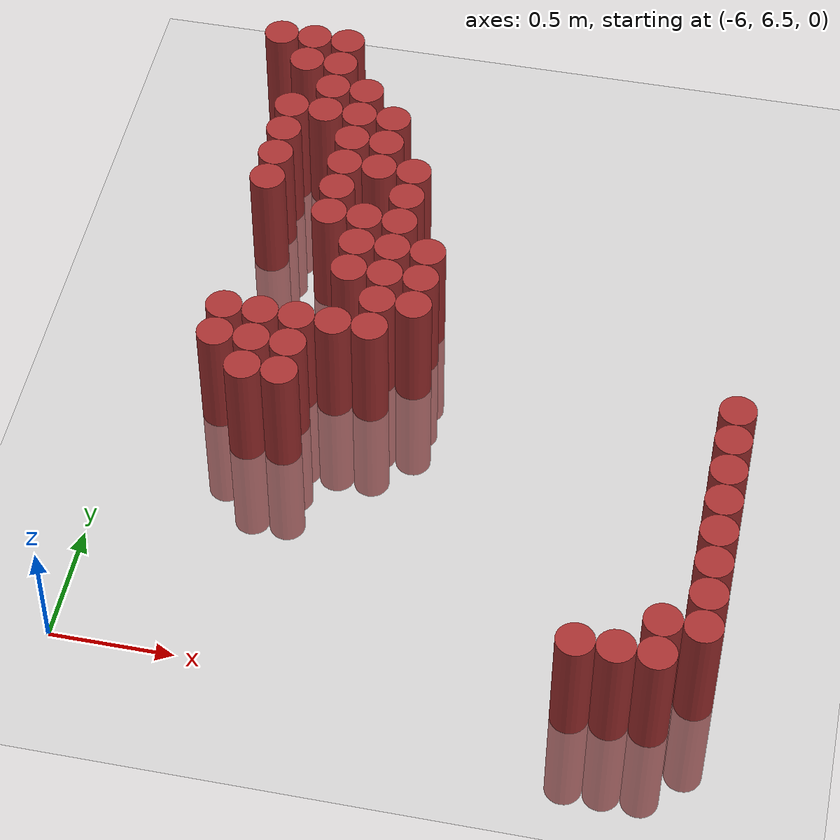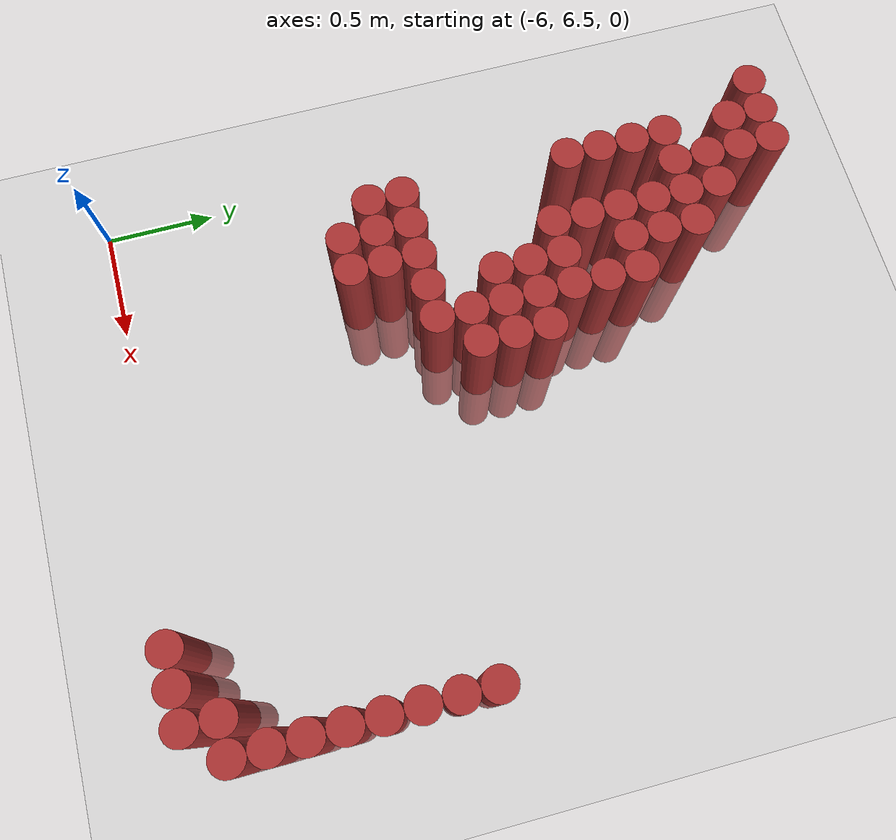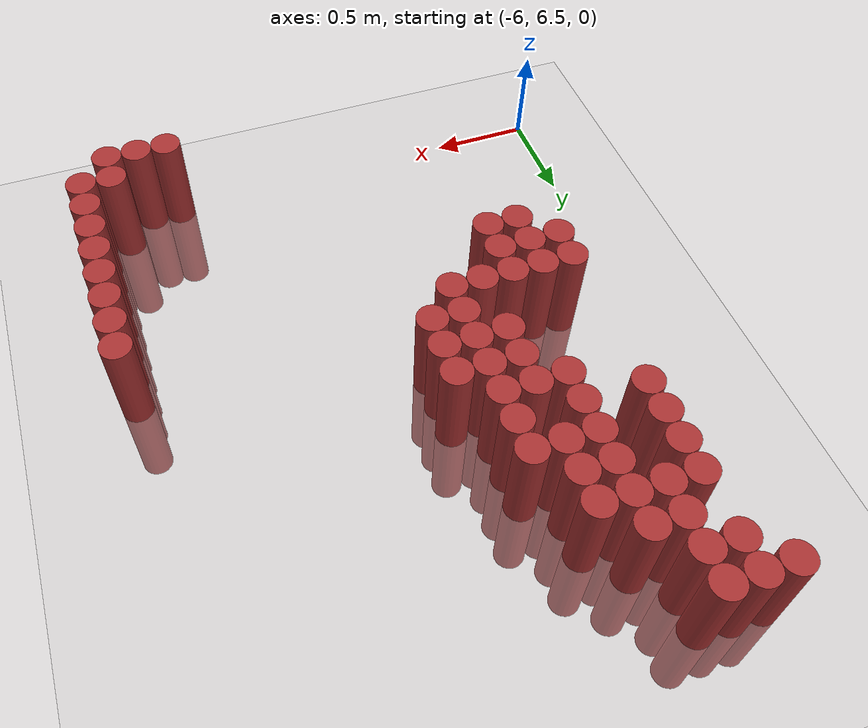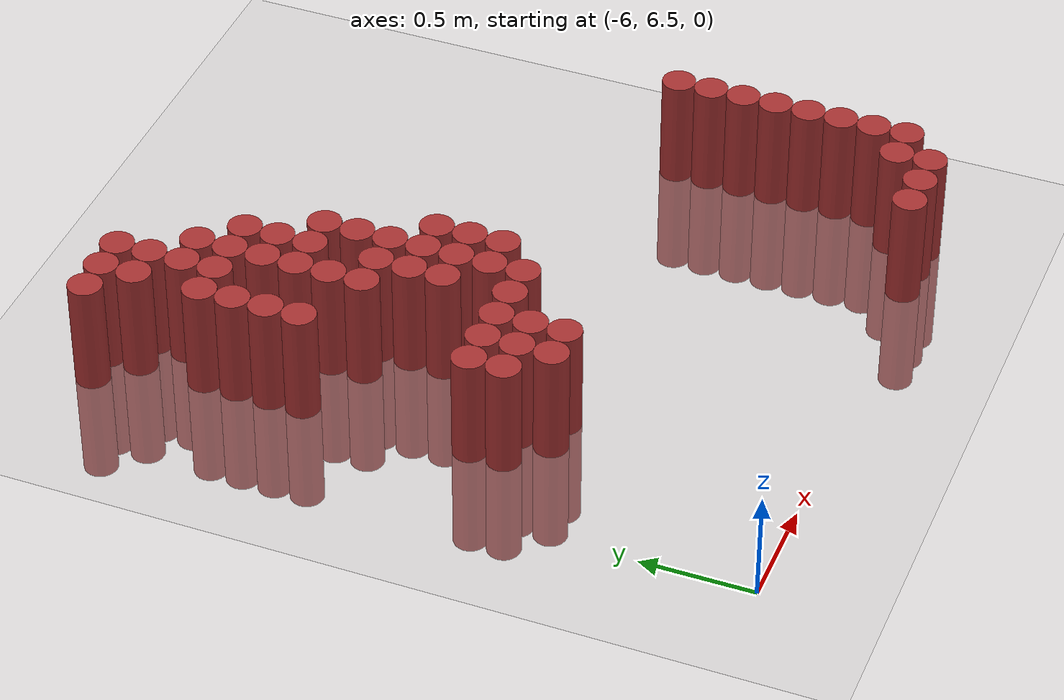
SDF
<sdf version="1.6">
 <world name="default">
  <model name="ground_plane">
   <static>1</static>
   <link name="link">
    <collision name="collision">
     <geometry><plane><normal>0 0 1</normal><size>100 100</size></plane></geometry>
     <surface><friction><ode><mu>100</mu><mu2>50</mu2></ode></friction></surface>
    </collision>
    <visual name="visual">
     <cast_shadows>0</cast_shadows>
     <geometry><plane><normal>0 0 1</normal><size>100 100</size></plane></geometry>
     <material>
      <script><uri>file://media/materials/scripts/gazebo.material</uri><name>Gazebo/Grey</name></script>
     </material>
    </visual>
   </link>
  </model>
  <model name="unit_cylinder_275">
   <static>1</static>
   <pose>-5.775000 9.525000 0.000000 0.000000 0.000000 0.000000</pose>
   <link name="link">
    <inertial>
     <mass>1</mass>
     <inertia><ixx>0.145833</ixx><ixy>0</ixy><ixz>0</ixz><iyy>0.145833</iyy><iyz>0</iyz><izz>0.125</izz></inertia>
    </inertial>
    <collision name="collision">
     <geometry><cylinder><radius>0.075000</radius><length>1</length></cylinder></geometry>
    </collision>
    <visual name="visual">
     <geometry><cylinder><radius>0.075000</radius><length>1</length></cylinder></geometry>
     <material>
      <ambient>0.648000 0.192000 0.192000 1</ambient>
      <diffuse>0.648000 0.192000 0.192000 1</diffuse>
     </material>
     <material>
      <script><name>Gazebo/Grey</name><uri>file://media/materials/scripts/gazebo.material</uri></script>
     </material>
    </visual>
   </link>
  </model>
  <model name="unit_cylinder_276">
   <static>1</static>
   <pose>-5.625000 7.725000 0.000000 0.000000 0.000000 0.000000</pose>
   <link name="link">
    <inertial>
     <mass>1</mass>
     <inertia><ixx>0.145833</ixx><ixy>0</ixy><ixz>0</ixz><iyy>0.145833</iyy><iyz>0</iyz><izz>0.125</izz></inertia>
    </inertial>
    <collision name="collision">
     <geometry><cylinder><radius>0.075000</radius><length>1</length></cylinder></geometry>
    </collision>
    <visual name="visual">
     <geometry><cylinder><radius>0.075000</radius><length>1</length></cylinder></geometry>
     <material>
      <ambient>0.648000 0.192000 0.192000 1</ambient>
      <diffuse>0.648000 0.192000 0.192000 1</diffuse>
     </material>
     <material>
      <script><name>Gazebo/Grey</name><uri>file://media/materials/scripts/gazebo.material</uri></script>
     </material>
    </visual>
   </link>
  </model>
  <model name="unit_cylinder_277">
   <static>1</static>
   <pose>-5.625000 7.875000 0.000000 0.000000 0.000000 0.000000</pose>
   <link name="link">
    <inertial>
     <mass>1</mass>
     <inertia><ixx>0.145833</ixx><ixy>0</ixy><ixz>0</ixz><iyy>0.145833</iyy><iyz>0</iyz><izz>0.125</izz></inertia>
    </inertial>
    <collision name="collision">
     <geometry><cylinder><radius>0.075000</radius><length>1</length></cylinder></geometry>
    </collision>
    <visual name="visual">
     <geometry><cylinder><radius>0.075000</radius><length>1</length></cylinder></geometry>
     <material>
      <ambient>0.648000 0.192000 0.192000 1</ambient>
      <diffuse>0.648000 0.192000 0.192000 1</diffuse>
     </material>
     <material>
      <script><name>Gazebo/Grey</name><uri>file://media/materials/scripts/gazebo.material</uri></script>
     </material>
    </visual>
   </link>
  </model>
  <model name="unit_cylinder_278">
   <static>1</static>
   <pose>-5.625000 8.625000 0.000000 0.000000 0.000000 0.000000</pose>
   <link name="link">
    <inertial>
     <mass>1</mass>
     <inertia><ixx>0.145833</ixx><ixy>0</ixy><ixz>0</ixz><iyy>0.145833</iyy><iyz>0</iyz><izz>0.125</izz></inertia>
    </inertial>
    <collision name="collision">
     <geometry><cylinder><radius>0.075000</radius><length>1</length></cylinder></geometry>
    </collision>
    <visual name="visual">
     <geometry><cylinder><radius>0.075000</radius><length>1</length></cylinder></geometry>
     <material>
      <ambient>0.648000 0.192000 0.192000 1</ambient>
      <diffuse>0.648000 0.192000 0.192000 1</diffuse>
     </material>
     <material>
      <script><name>Gazebo/Grey</name><uri>file://media/materials/scripts/gazebo.material</uri></script>
     </material>
    </visual>
   </link>
  </model>
  <model name="unit_cylinder_279">
   <static>1</static>
   <pose>-5.625000 8.775000 0.000000 0.000000 0.000000 0.000000</pose>
   <link name="link">
    <inertial>
     <mass>1</mass>
     <inertia><ixx>0.145833</ixx><ixy>0</ixy><ixz>0</ixz><iyy>0.145833</iyy><iyz>0</iyz><izz>0.125</izz></inertia>
    </inertial>
    <collision name="collision">
     <geometry><cylinder><radius>0.075000</radius><length>1</length></cylinder></geometry>
    </collision>
    <visual name="visual">
     <geometry><cylinder><radius>0.075000</radius><length>1</length></cylinder></geometry>
     <material>
      <ambient>0.648000 0.192000 0.192000 1</ambient>
      <diffuse>0.648000 0.192000 0.192000 1</diffuse>
     </material>
     <material>
      <script><name>Gazebo/Grey</name><uri>file://media/materials/scripts/gazebo.material</uri></script>
     </material>
    </visual>
   </link>
  </model>
  <model name="unit_cylinder_280">
   <static>1</static>
   <pose>-5.625000 8.925000 0.000000 0.000000 0.000000 0.000000</pose>
   <link name="link">
    <inertial>
     <mass>1</mass>
     <inertia><ixx>0.145833</ixx><ixy>0</ixy><ixz>0</ixz><iyy>0.145833</iyy><iyz>0</iyz><izz>0.125</izz></inertia>
    </inertial>
    <collision name="collision">
     <geometry><cylinder><radius>0.075000</radius><length>1</length></cylinder></geometry>
    </collision>
    <visual name="visual">
     <geometry><cylinder><radius>0.075000</radius><length>1</length></cylinder></geometry>
     <material>
      <ambient>0.648000 0.192000 0.192000 1</ambient>
      <diffuse>0.648000 0.192000 0.192000 1</diffuse>
     </material>
     <material>
      <script><name>Gazebo/Grey</name><uri>file://media/materials/scripts/gazebo.material</uri></script>
     </material>
    </visual>
   </link>
  </model>
  <model name="unit_cylinder_281">
   <static>1</static>
   <pose>-5.625000 9.075000 0.000000 0.000000 0.000000 0.000000</pose>
   <link name="link">
    <inertial>
     <mass>1</mass>
     <inertia><ixx>0.145833</ixx><ixy>0</ixy><ixz>0</ixz><iyy>0.145833</iyy><iyz>0</iyz><izz>0.125</izz></inertia>
    </inertial>
    <collision name="collision">
     <geometry><cylinder><radius>0.075000</radius><length>1</length></cylinder></geometry>
    </collision>
    <visual name="visual">
     <geometry><cylinder><radius>0.075000</radius><length>1</length></cylinder></geometry>
     <material>
      <ambient>0.648000 0.192000 0.192000 1</ambient>
      <diffuse>0.648000 0.192000 0.192000 1</diffuse>
     </material>
     <material>
      <script><name>Gazebo/Grey</name><uri>file://media/materials/scripts/gazebo.material</uri></script>
     </material>
    </visual>
   </link>
  </model>
  <model name="unit_cylinder_282">
   <static>1</static>
   <pose>-5.625000 9.375000 0.000000 0.000000 0.000000 0.000000</pose>
   <link name="link">
    <inertial>
     <mass>1</mass>
     <inertia><ixx>0.145833</ixx><ixy>0</ixy><ixz>0</ixz><iyy>0.145833</iyy><iyz>0</iyz><izz>0.125</izz></inertia>
    </inertial>
    <collision name="collision">
     <geometry><cylinder><radius>0.075000</radius><length>1</length></cylinder></geometry>
    </collision>
    <visual name="visual">
     <geometry><cylinder><radius>0.075000</radius><length>1</length></cylinder></geometry>
     <material>
      <ambient>0.648000 0.192000 0.192000 1</ambient>
      <diffuse>0.648000 0.192000 0.192000 1</diffuse>
     </material>
     <material>
      <script><name>Gazebo/Grey</name><uri>file://media/materials/scripts/gazebo.material</uri></script>
     </material>
    </visual>
   </link>
  </model>
  <model name="unit_cylinder_283">
   <static>1</static>
   <pose>-5.625000 9.525000 0.000000 0.000000 0.000000 0.000000</pose>
   <link name="link">
    <inertial>
     <mass>1</mass>
     <inertia><ixx>0.145833</ixx><ixy>0</ixy><ixz>0</ixz><iyy>0.145833</iyy><iyz>0</iyz><izz>0.125</izz></inertia>
    </inertial>
    <collision name="collision">
     <geometry><cylinder><radius>0.075000</radius><length>1</length></cylinder></geometry>
    </collision>
    <visual name="visual">
     <geometry><cylinder><radius>0.075000</radius><length>1</length></cylinder></geometry>
     <material>
      <ambient>0.648000 0.192000 0.192000 1</ambient>
      <diffuse>0.648000 0.192000 0.192000 1</diffuse>
     </material>
     <material>
      <script><name>Gazebo/Grey</name><uri>file://media/materials/scripts/gazebo.material</uri></script>
     </material>
    </visual>
   </link>
  </model>
  <model name="unit_cylinder_284">
   <static>1</static>
   <pose>-5.475000 7.575000 0.000000 0.000000 0.000000 0.000000</pose>
   <link name="link">
    <inertial>
     <mass>1</mass>
     <inertia><ixx>0.145833</ixx><ixy>0</ixy><ixz>0</ixz><iyy>0.145833</iyy><iyz>0</iyz><izz>0.125</izz></inertia>
    </inertial>
    <collision name="collision">
     <geometry><cylinder><radius>0.075000</radius><length>1</length></cylinder></geometry>
    </collision>
    <visual name="visual">
     <geometry><cylinder><radius>0.075000</radius><length>1</length></cylinder></geometry>
     <material>
      <ambient>0.648000 0.192000 0.192000 1</ambient>
      <diffuse>0.648000 0.192000 0.192000 1</diffuse>
     </material>
     <material>
      <script><name>Gazebo/Grey</name><uri>file://media/materials/scripts/gazebo.material</uri></script>
     </material>
    </visual>
   </link>
  </model>
  <model name="unit_cylinder_285">
   <static>1</static>
   <pose>-5.475000 7.725000 0.000000 0.000000 0.000000 0.000000</pose>
   <link name="link">
    <inertial>
     <mass>1</mass>
     <inertia><ixx>0.145833</ixx><ixy>0</ixy><ixz>0</ixz><iyy>0.145833</iyy><iyz>0</iyz><izz>0.125</izz></inertia>
    </inertial>
    <collision name="collision">
     <geometry><cylinder><radius>0.075000</radius><length>1</length></cylinder></geometry>
    </collision>
    <visual name="visual">
     <geometry><cylinder><radius>0.075000</radius><length>1</length></cylinder></geometry>
     <material>
      <ambient>0.648000 0.192000 0.192000 1</ambient>
      <diffuse>0.648000 0.192000 0.192000 1</diffuse>
     </material>
     <material>
      <script><name>Gazebo/Grey</name><uri>file://media/materials/scripts/gazebo.material</uri></script>
     </material>
    </visual>
   </link>
  </model>
  <model name="unit_cylinder_286">
   <static>1</static>
   <pose>-5.475000 7.875000 0.000000 0.000000 0.000000 0.000000</pose>
   <link name="link">
    <inertial>
     <mass>1</mass>
     <inertia><ixx>0.145833</ixx><ixy>0</ixy><ixz>0</ixz><iyy>0.145833</iyy><iyz>0</iyz><izz>0.125</izz></inertia>
    </inertial>
    <collision name="collision">
     <geometry><cylinder><radius>0.075000</radius><length>1</length></cylinder></geometry>
    </collision>
    <visual name="visual">
     <geometry><cylinder><radius>0.075000</radius><length>1</length></cylinder></geometry>
     <material>
      <ambient>0.648000 0.192000 0.192000 1</ambient>
      <diffuse>0.648000 0.192000 0.192000 1</diffuse>
     </material>
     <material>
      <script><name>Gazebo/Grey</name><uri>file://media/materials/scripts/gazebo.material</uri></script>
     </material>
    </visual>
   </link>
  </model>
  <model name="unit_cylinder_287">
   <static>1</static>
   <pose>-5.475000 9.075000 0.000000 0.000000 0.000000 0.000000</pose>
   <link name="link">
    <inertial>
     <mass>1</mass>
     <inertia><ixx>0.145833</ixx><ixy>0</ixy><ixz>0</ixz><iyy>0.145833</iyy><iyz>0</iyz><izz>0.125</izz></inertia>
    </inertial>
    <collision name="collision">
     <geometry><cylinder><radius>0.075000</radius><length>1</length></cylinder></geometry>
    </collision>
    <visual name="visual">
     <geometry><cylinder><radius>0.075000</radius><length>1</length></cylinder></geometry>
     <material>
      <ambient>0.648000 0.192000 0.192000 1</ambient>
      <diffuse>0.648000 0.192000 0.192000 1</diffuse>
     </material>
     <material>
      <script><name>Gazebo/Grey</name><uri>file://media/materials/scripts/gazebo.material</uri></script>
     </material>
    </visual>
   </link>
  </model>
  <model name="unit_cylinder_288">
   <static>1</static>
   <pose>-5.475000 9.225000 0.000000 0.000000 0.000000 0.000000</pose>
   <link name="link">
    <inertial>
     <mass>1</mass>
     <inertia><ixx>0.145833</ixx><ixy>0</ixy><ixz>0</ixz><iyy>0.145833</iyy><iyz>0</iyz><izz>0.125</izz></inertia>
    </inertial>
    <collision name="collision">
     <geometry><cylinder><radius>0.075000</radius><length>1</length></cylinder></geometry>
    </collision>
    <visual name="visual">
     <geometry><cylinder><radius>0.075000</radius><length>1</length></cylinder></geometry>
     <material>
      <ambient>0.648000 0.192000 0.192000 1</ambient>
      <diffuse>0.648000 0.192000 0.192000 1</diffuse>
     </material>
     <material>
      <script><name>Gazebo/Grey</name><uri>file://media/materials/scripts/gazebo.material</uri></script>
     </material>
    </visual>
   </link>
  </model>
  <model name="unit_cylinder_289">
   <static>1</static>
   <pose>-5.475000 9.375000 0.000000 0.000000 0.000000 0.000000</pose>
   <link name="link">
    <inertial>
     <mass>1</mass>
     <inertia><ixx>0.145833</ixx><ixy>0</ixy><ixz>0</ixz><iyy>0.145833</iyy><iyz>0</iyz><izz>0.125</izz></inertia>
    </inertial>
    <collision name="collision">
     <geometry><cylinder><radius>0.075000</radius><length>1</length></cylinder></geometry>
    </collision>
    <visual name="visual">
     <geometry><cylinder><radius>0.075000</radius><length>1</length></cylinder></geometry>
     <material>
      <ambient>0.648000 0.192000 0.192000 1</ambient>
      <diffuse>0.648000 0.192000 0.192000 1</diffuse>
     </material>
     <material>
      <script><name>Gazebo/Grey</name><uri>file://media/materials/scripts/gazebo.material</uri></script>
     </material>
    </visual>
   </link>
  </model>
  <model name="unit_cylinder_290">
   <static>1</static>
   <pose>-5.475000 9.525000 0.000000 0.000000 0.000000 0.000000</pose>
   <link name="link">
    <inertial>
     <mass>1</mass>
     <inertia><ixx>0.145833</ixx><ixy>0</ixy><ixz>0</ixz><iyy>0.145833</iyy><iyz>0</iyz><izz>0.125</izz></inertia>
    </inertial>
    <collision name="collision">
     <geometry><cylinder><radius>0.075000</radius><length>1</length></cylinder></geometry>
    </collision>
    <visual name="visual">
     <geometry><cylinder><radius>0.075000</radius><length>1</length></cylinder></geometry>
     <material>
      <ambient>0.648000 0.192000 0.192000 1</ambient>
      <diffuse>0.648000 0.192000 0.192000 1</diffuse>
     </material>
     <material>
      <script><name>Gazebo/Grey</name><uri>file://media/materials/scripts/gazebo.material</uri></script>
     </material>
    </visual>
   </link>
  </model>
  <model name="unit_cylinder_291">
   <static>1</static>
   <pose>-5.325000 7.575000 0.000000 0.000000 0.000000 0.000000</pose>
   <link name="link">
    <inertial>
     <mass>1</mass>
     <inertia><ixx>0.145833</ixx><ixy>0</ixy><ixz>0</ixz><iyy>0.145833</iyy><iyz>0</iyz><izz>0.125</izz></inertia>
    </inertial>
    <collision name="collision">
     <geometry><cylinder><radius>0.075000</radius><length>1</length></cylinder></geometry>
    </collision>
    <visual name="visual">
     <geometry><cylinder><radius>0.075000</radius><length>1</length></cylinder></geometry>
     <material>
      <ambient>0.648000 0.192000 0.192000 1</ambient>
      <diffuse>0.648000 0.192000 0.192000 1</diffuse>
     </material>
     <material>
      <script><name>Gazebo/Grey</name><uri>file://media/materials/scripts/gazebo.material</uri></script>
     </material>
    </visual>
   </link>
  </model>
  <model name="unit_cylinder_292">
   <static>1</static>
   <pose>-5.325000 7.725000 0.000000 0.000000 0.000000 0.000000</pose>
   <link name="link">
    <inertial>
     <mass>1</mass>
     <inertia><ixx>0.145833</ixx><ixy>0</ixy><ixz>0</ixz><iyy>0.145833</iyy><iyz>0</iyz><izz>0.125</izz></inertia>
    </inertial>
    <collision name="collision">
     <geometry><cylinder><radius>0.075000</radius><length>1</length></cylinder></geometry>
    </collision>
    <visual name="visual">
     <geometry><cylinder><radius>0.075000</radius><length>1</length></cylinder></geometry>
     <material>
      <ambient>0.648000 0.192000 0.192000 1</ambient>
      <diffuse>0.648000 0.192000 0.192000 1</diffuse>
     </material>
     <material>
      <script><name>Gazebo/Grey</name><uri>file://media/materials/scripts/gazebo.material</uri></script>
     </material>
    </visual>
   </link>
  </model>
  <model name="unit_cylinder_293">
   <static>1</static>
   <pose>-5.325000 7.875000 0.000000 0.000000 0.000000 0.000000</pose>
   <link name="link">
    <inertial>
     <mass>1</mass>
     <inertia><ixx>0.145833</ixx><ixy>0</ixy><ixz>0</ixz><iyy>0.145833</iyy><iyz>0</iyz><izz>0.125</izz></inertia>
    </inertial>
    <collision name="collision">
     <geometry><cylinder><radius>0.075000</radius><length>1</length></cylinder></geometry>
    </collision>
    <visual name="visual">
     <geometry><cylinder><radius>0.075000</radius><length>1</length></cylinder></geometry>
     <material>
      <ambient>0.648000 0.192000 0.192000 1</ambient>
      <diffuse>0.648000 0.192000 0.192000 1</diffuse>
     </material>
     <material>
      <script><name>Gazebo/Grey</name><uri>file://media/materials/scripts/gazebo.material</uri></script>
     </material>
    </visual>
   </link>
  </model>
  <model name="unit_cylinder_294">
   <static>1</static>
   <pose>-5.325000 8.475000 0.000000 0.000000 0.000000 0.000000</pose>
   <link name="link">
    <inertial>
     <mass>1</mass>
     <inertia><ixx>0.145833</ixx><ixy>0</ixy><ixz>0</ixz><iyy>0.145833</iyy><iyz>0</iyz><izz>0.125</izz></inertia>
    </inertial>
    <collision name="collision">
     <geometry><cylinder><radius>0.075000</radius><length>1</length></cylinder></geometry>
    </collision>
    <visual name="visual">
     <geometry><cylinder><radius>0.075000</radius><length>1</length></cylinder></geometry>
     <material>
      <ambient>0.648000 0.192000 0.192000 1</ambient>
      <diffuse>0.648000 0.192000 0.192000 1</diffuse>
     </material>
     <material>
      <script><name>Gazebo/Grey</name><uri>file://media/materials/scripts/gazebo.material</uri></script>
     </material>
    </visual>
   </link>
  </model>
  <model name="unit_cylinder_295">
   <static>1</static>
   <pose>-5.325000 8.625000 0.000000 0.000000 0.000000 0.000000</pose>
   <link name="link">
    <inertial>
     <mass>1</mass>
     <inertia><ixx>0.145833</ixx><ixy>0</ixy><ixz>0</ixz><iyy>0.145833</iyy><iyz>0</iyz><izz>0.125</izz></inertia>
    </inertial>
    <collision name="collision">
     <geometry><cylinder><radius>0.075000</radius><length>1</length></cylinder></geometry>
    </collision>
    <visual name="visual">
     <geometry><cylinder><radius>0.075000</radius><length>1</length></cylinder></geometry>
     <material>
      <ambient>0.648000 0.192000 0.192000 1</ambient>
      <diffuse>0.648000 0.192000 0.192000 1</diffuse>
     </material>
     <material>
      <script><name>Gazebo/Grey</name><uri>file://media/materials/scripts/gazebo.material</uri></script>
     </material>
    </visual>
   </link>
  </model>
  <model name="unit_cylinder_296">
   <static>1</static>
   <pose>-5.325000 8.775000 0.000000 0.000000 0.000000 0.000000</pose>
   <link name="link">
    <inertial>
     <mass>1</mass>
     <inertia><ixx>0.145833</ixx><ixy>0</ixy><ixz>0</ixz><iyy>0.145833</iyy><iyz>0</iyz><izz>0.125</izz></inertia>
    </inertial>
    <collision name="collision">
     <geometry><cylinder><radius>0.075000</radius><length>1</length></cylinder></geometry>
    </collision>
    <visual name="visual">
     <geometry><cylinder><radius>0.075000</radius><length>1</length></cylinder></geometry>
     <material>
      <ambient>0.648000 0.192000 0.192000 1</ambient>
      <diffuse>0.648000 0.192000 0.192000 1</diffuse>
     </material>
     <material>
      <script><name>Gazebo/Grey</name><uri>file://media/materials/scripts/gazebo.material</uri></script>
     </material>
    </visual>
   </link>
  </model>
  <model name="unit_cylinder_297">
   <static>1</static>
   <pose>-5.325000 8.925000 0.000000 0.000000 0.000000 0.000000</pose>
   <link name="link">
    <inertial>
     <mass>1</mass>
     <inertia><ixx>0.145833</ixx><ixy>0</ixy><ixz>0</ixz><iyy>0.145833</iyy><iyz>0</iyz><izz>0.125</izz></inertia>
    </inertial>
    <collision name="collision">
     <geometry><cylinder><radius>0.075000</radius><length>1</length></cylinder></geometry>
    </collision>
    <visual name="visual">
     <geometry><cylinder><radius>0.075000</radius><length>1</length></cylinder></geometry>
     <material>
      <ambient>0.648000 0.192000 0.192000 1</ambient>
      <diffuse>0.648000 0.192000 0.192000 1</diffuse>
     </material>
     <material>
      <script><name>Gazebo/Grey</name><uri>file://media/materials/scripts/gazebo.material</uri></script>
     </material>
    </visual>
   </link>
  </model>
  <model name="unit_cylinder_298">
   <static>1</static>
   <pose>-5.325000 9.075000 0.000000 0.000000 0.000000 0.000000</pose>
   <link name="link">
    <inertial>
     <mass>1</mass>
     <inertia><ixx>0.145833</ixx><ixy>0</ixy><ixz>0</ixz><iyy>0.145833</iyy><iyz>0</iyz><izz>0.125</izz></inertia>
    </inertial>
    <collision name="collision">
     <geometry><cylinder><radius>0.075000</radius><length>1</length></cylinder></geometry>
    </collision>
    <visual name="visual">
     <geometry><cylinder><radius>0.075000</radius><length>1</length></cylinder></geometry>
     <material>
      <ambient>0.648000 0.192000 0.192000 1</ambient>
      <diffuse>0.648000 0.192000 0.192000 1</diffuse>
     </material>
     <material>
      <script><name>Gazebo/Grey</name><uri>file://media/materials/scripts/gazebo.material</uri></script>
     </material>
    </visual>
   </link>
  </model>
  <model name="unit_cylinder_299">
   <static>1</static>
   <pose>-5.325000 9.225000 0.000000 0.000000 0.000000 0.000000</pose>
   <link name="link">
    <inertial>
     <mass>1</mass>
     <inertia><ixx>0.145833</ixx><ixy>0</ixy><ixz>0</ixz><iyy>0.145833</iyy><iyz>0</iyz><izz>0.125</izz></inertia>
    </inertial>
    <collision name="collision">
     <geometry><cylinder><radius>0.075000</radius><length>1</length></cylinder></geometry>
    </collision>
    <visual name="visual">
     <geometry><cylinder><radius>0.075000</radius><length>1</length></cylinder></geometry>
     <material>
      <ambient>0.648000 0.192000 0.192000 1</ambient>
      <diffuse>0.648000 0.192000 0.192000 1</diffuse>
     </material>
     <material>
      <script><name>Gazebo/Grey</name><uri>file://media/materials/scripts/gazebo.material</uri></script>
     </material>
    </visual>
   </link>
  </model>
  <model name="unit_cylinder_300">
   <static>1</static>
   <pose>-5.175000 7.875000 0.000000 0.000000 0.000000 0.000000</pose>
   <link name="link">
    <inertial>
     <mass>1</mass>
     <inertia><ixx>0.145833</ixx><ixy>0</ixy><ixz>0</ixz><iyy>0.145833</iyy><iyz>0</iyz><izz>0.125</izz></inertia>
    </inertial>
    <collision name="collision">
     <geometry><cylinder><radius>0.075000</radius><length>1</length></cylinder></geometry>
    </collision>
    <visual name="visual">
     <geometry><cylinder><radius>0.075000</radius><length>1</length></cylinder></geometry>
     <material>
      <ambient>0.648000 0.192000 0.192000 1</ambient>
      <diffuse>0.648000 0.192000 0.192000 1</diffuse>
     </material>
     <material>
      <script><name>Gazebo/Grey</name><uri>file://media/materials/scripts/gazebo.material</uri></script>
     </material>
    </visual>
   </link>
  </model>
  <model name="unit_cylinder_301">
   <static>1</static>
   <pose>-5.175000 8.175000 0.000000 0.000000 0.000000 0.000000</pose>
   <link name="link">
    <inertial>
     <mass>1</mass>
     <inertia><ixx>0.145833</ixx><ixy>0</ixy><ixz>0</ixz><iyy>0.145833</iyy><iyz>0</iyz><izz>0.125</izz></inertia>
    </inertial>
    <collision name="collision">
     <geometry><cylinder><radius>0.075000</radius><length>1</length></cylinder></geometry>
    </collision>
    <visual name="visual">
     <geometry><cylinder><radius>0.075000</radius><length>1</length></cylinder></geometry>
     <material>
      <ambient>0.648000 0.192000 0.192000 1</ambient>
      <diffuse>0.648000 0.192000 0.192000 1</diffuse>
     </material>
     <material>
      <script><name>Gazebo/Grey</name><uri>file://media/materials/scripts/gazebo.material</uri></script>
     </material>
    </visual>
   </link>
  </model>
  <model name="unit_cylinder_302">
   <static>1</static>
   <pose>-5.175000 8.325000 0.000000 0.000000 0.000000 0.000000</pose>
   <link name="link">
    <inertial>
     <mass>1</mass>
     <inertia><ixx>0.145833</ixx><ixy>0</ixy><ixz>0</ixz><iyy>0.145833</iyy><iyz>0</iyz><izz>0.125</izz></inertia>
    </inertial>
    <collision name="collision">
     <geometry><cylinder><radius>0.075000</radius><length>1</length></cylinder></geometry>
    </collision>
    <visual name="visual">
     <geometry><cylinder><radius>0.075000</radius><length>1</length></cylinder></geometry>
     <material>
      <ambient>0.648000 0.192000 0.192000 1</ambient>
      <diffuse>0.648000 0.192000 0.192000 1</diffuse>
     </material>
     <material>
      <script><name>Gazebo/Grey</name><uri>file://media/materials/scripts/gazebo.material</uri></script>
     </material>
    </visual>
   </link>
  </model>
  <model name="unit_cylinder_303">
   <static>1</static>
   <pose>-5.175000 8.475000 0.000000 0.000000 0.000000 0.000000</pose>
   <link name="link">
    <inertial>
     <mass>1</mass>
     <inertia><ixx>0.145833</ixx><ixy>0</ixy><ixz>0</ixz><iyy>0.145833</iyy><iyz>0</iyz><izz>0.125</izz></inertia>
    </inertial>
    <collision name="collision">
     <geometry><cylinder><radius>0.075000</radius><length>1</length></cylinder></geometry>
    </collision>
    <visual name="visual">
     <geometry><cylinder><radius>0.075000</radius><length>1</length></cylinder></geometry>
     <material>
      <ambient>0.648000 0.192000 0.192000 1</ambient>
      <diffuse>0.648000 0.192000 0.192000 1</diffuse>
     </material>
     <material>
      <script><name>Gazebo/Grey</name><uri>file://media/materials/scripts/gazebo.material</uri></script>
     </material>
    </visual>
   </link>
  </model>
  <model name="unit_cylinder_304">
   <static>1</static>
   <pose>-5.175000 8.775000 0.000000 0.000000 0.000000 0.000000</pose>
   <link name="link">
    <inertial>
     <mass>1</mass>
     <inertia><ixx>0.145833</ixx><ixy>0</ixy><ixz>0</ixz><iyy>0.145833</iyy><iyz>0</iyz><izz>0.125</izz></inertia>
    </inertial>
    <collision name="collision">
     <geometry><cylinder><radius>0.075000</radius><length>1</length></cylinder></geometry>
    </collision>
    <visual name="visual">
     <geometry><cylinder><radius>0.075000</radius><length>1</length></cylinder></geometry>
     <material>
      <ambient>0.648000 0.192000 0.192000 1</ambient>
      <diffuse>0.648000 0.192000 0.192000 1</diffuse>
     </material>
     <material>
      <script><name>Gazebo/Grey</name><uri>file://media/materials/scripts/gazebo.material</uri></script>
     </material>
    </visual>
   </link>
  </model>
  <model name="unit_cylinder_305">
   <static>1</static>
   <pose>-5.175000 8.925000 0.000000 0.000000 0.000000 0.000000</pose>
   <link name="link">
    <inertial>
     <mass>1</mass>
     <inertia><ixx>0.145833</ixx><ixy>0</ixy><ixz>0</ixz><iyy>0.145833</iyy><iyz>0</iyz><izz>0.125</izz></inertia>
    </inertial>
    <collision name="collision">
     <geometry><cylinder><radius>0.075000</radius><length>1</length></cylinder></geometry>
    </collision>
    <visual name="visual">
     <geometry><cylinder><radius>0.075000</radius><length>1</length></cylinder></geometry>
     <material>
      <ambient>0.648000 0.192000 0.192000 1</ambient>
      <diffuse>0.648000 0.192000 0.192000 1</diffuse>
     </material>
     <material>
      <script><name>Gazebo/Grey</name><uri>file://media/materials/scripts/gazebo.material</uri></script>
     </material>
    </visual>
   </link>
  </model>
  <model name="unit_cylinder_306">
   <static>1</static>
   <pose>-5.175000 9.075000 0.000000 0.000000 0.000000 0.000000</pose>
   <link name="link">
    <inertial>
     <mass>1</mass>
     <inertia><ixx>0.145833</ixx><ixy>0</ixy><ixz>0</ixz><iyy>0.145833</iyy><iyz>0</iyz><izz>0.125</izz></inertia>
    </inertial>
    <collision name="collision">
     <geometry><cylinder><radius>0.075000</radius><length>1</length></cylinder></geometry>
    </collision>
    <visual name="visual">
     <geometry><cylinder><radius>0.075000</radius><length>1</length></cylinder></geometry>
     <material>
      <ambient>0.648000 0.192000 0.192000 1</ambient>
      <diffuse>0.648000 0.192000 0.192000 1</diffuse>
     </material>
     <material>
      <script><name>Gazebo/Grey</name><uri>file://media/materials/scripts/gazebo.material</uri></script>
     </material>
    </visual>
   </link>
  </model>
  <model name="unit_cylinder_307">
   <static>1</static>
   <pose>-5.025000 7.875000 0.000000 0.000000 0.000000 0.000000</pose>
   <link name="link">
    <inertial>
     <mass>1</mass>
     <inertia><ixx>0.145833</ixx><ixy>0</ixy><ixz>0</ixz><iyy>0.145833</iyy><iyz>0</iyz><izz>0.125</izz></inertia>
    </inertial>
    <collision name="collision">
     <geometry><cylinder><radius>0.075000</radius><length>1</length></cylinder></geometry>
    </collision>
    <visual name="visual">
     <geometry><cylinder><radius>0.075000</radius><length>1</length></cylinder></geometry>
     <material>
      <ambient>0.648000 0.192000 0.192000 1</ambient>
      <diffuse>0.648000 0.192000 0.192000 1</diffuse>
     </material>
     <material>
      <script><name>Gazebo/Grey</name><uri>file://media/materials/scripts/gazebo.material</uri></script>
     </material>
    </visual>
   </link>
  </model>
  <model name="unit_cylinder_308">
   <static>1</static>
   <pose>-5.025000 8.025000 0.000000 0.000000 0.000000 0.000000</pose>
   <link name="link">
    <inertial>
     <mass>1</mass>
     <inertia><ixx>0.145833</ixx><ixy>0</ixy><ixz>0</ixz><iyy>0.145833</iyy><iyz>0</iyz><izz>0.125</izz></inertia>
    </inertial>
    <collision name="collision">
     <geometry><cylinder><radius>0.075000</radius><length>1</length></cylinder></geometry>
    </collision>
    <visual name="visual">
     <geometry><cylinder><radius>0.075000</radius><length>1</length></cylinder></geometry>
     <material>
      <ambient>0.648000 0.192000 0.192000 1</ambient>
      <diffuse>0.648000 0.192000 0.192000 1</diffuse>
     </material>
     <material>
      <script><name>Gazebo/Grey</name><uri>file://media/materials/scripts/gazebo.material</uri></script>
     </material>
    </visual>
   </link>
  </model>
  <model name="unit_cylinder_309">
   <static>1</static>
   <pose>-5.025000 8.175000 0.000000 0.000000 0.000000 0.000000</pose>
   <link name="link">
    <inertial>
     <mass>1</mass>
     <inertia><ixx>0.145833</ixx><ixy>0</ixy><ixz>0</ixz><iyy>0.145833</iyy><iyz>0</iyz><izz>0.125</izz></inertia>
    </inertial>
    <collision name="collision">
     <geometry><cylinder><radius>0.075000</radius><length>1</length></cylinder></geometry>
    </collision>
    <visual name="visual">
     <geometry><cylinder><radius>0.075000</radius><length>1</length></cylinder></geometry>
     <material>
      <ambient>0.648000 0.192000 0.192000 1</ambient>
      <diffuse>0.648000 0.192000 0.192000 1</diffuse>
     </material>
     <material>
      <script><name>Gazebo/Grey</name><uri>file://media/materials/scripts/gazebo.material</uri></script>
     </material>
    </visual>
   </link>
  </model>
  <model name="unit_cylinder_310">
   <static>1</static>
   <pose>-5.025000 8.325000 0.000000 0.000000 0.000000 0.000000</pose>
   <link name="link">
    <inertial>
     <mass>1</mass>
     <inertia><ixx>0.145833</ixx><ixy>0</ixy><ixz>0</ixz><iyy>0.145833</iyy><iyz>0</iyz><izz>0.125</izz></inertia>
    </inertial>
    <collision name="collision">
     <geometry><cylinder><radius>0.075000</radius><length>1</length></cylinder></geometry>
    </collision>
    <visual name="visual">
     <geometry><cylinder><radius>0.075000</radius><length>1</length></cylinder></geometry>
     <material>
      <ambient>0.648000 0.192000 0.192000 1</ambient>
      <diffuse>0.648000 0.192000 0.192000 1</diffuse>
     </material>
     <material>
      <script><name>Gazebo/Grey</name><uri>file://media/materials/scripts/gazebo.material</uri></script>
     </material>
    </visual>
   </link>
  </model>
  <model name="unit_cylinder_311">
   <static>1</static>
   <pose>-5.025000 8.475000 0.000000 0.000000 0.000000 0.000000</pose>
   <link name="link">
    <inertial>
     <mass>1</mass>
     <inertia><ixx>0.145833</ixx><ixy>0</ixy><ixz>0</ixz><iyy>0.145833</iyy><iyz>0</iyz><izz>0.125</izz></inertia>
    </inertial>
    <collision name="collision">
     <geometry><cylinder><radius>0.075000</radius><length>1</length></cylinder></geometry>
    </collision>
    <visual name="visual">
     <geometry><cylinder><radius>0.075000</radius><length>1</length></cylinder></geometry>
     <material>
      <ambient>0.648000 0.192000 0.192000 1</ambient>
      <diffuse>0.648000 0.192000 0.192000 1</diffuse>
     </material>
     <material>
      <script><name>Gazebo/Grey</name><uri>file://media/materials/scripts/gazebo.material</uri></script>
     </material>
    </visual>
   </link>
  </model>
  <model name="unit_cylinder_312">
   <static>1</static>
   <pose>-5.025000 8.625000 0.000000 0.000000 0.000000 0.000000</pose>
   <link name="link">
    <inertial>
     <mass>1</mass>
     <inertia><ixx>0.145833</ixx><ixy>0</ixy><ixz>0</ixz><iyy>0.145833</iyy><iyz>0</iyz><izz>0.125</izz></inertia>
    </inertial>
    <collision name="collision">
     <geometry><cylinder><radius>0.075000</radius><length>1</length></cylinder></geometry>
    </collision>
    <visual name="visual">
     <geometry><cylinder><radius>0.075000</radius><length>1</length></cylinder></geometry>
     <material>
      <ambient>0.648000 0.192000 0.192000 1</ambient>
      <diffuse>0.648000 0.192000 0.192000 1</diffuse>
     </material>
     <material>
      <script><name>Gazebo/Grey</name><uri>file://media/materials/scripts/gazebo.material</uri></script>
     </material>
    </visual>
   </link>
  </model>
  <model name="unit_cylinder_313">
   <static>1</static>
   <pose>-5.025000 8.775000 0.000000 0.000000 0.000000 0.000000</pose>
   <link name="link">
    <inertial>
     <mass>1</mass>
     <inertia><ixx>0.145833</ixx><ixy>0</ixy><ixz>0</ixz><iyy>0.145833</iyy><iyz>0</iyz><izz>0.125</izz></inertia>
    </inertial>
    <collision name="collision">
     <geometry><cylinder><radius>0.075000</radius><length>1</length></cylinder></geometry>
    </collision>
    <visual name="visual">
     <geometry><cylinder><radius>0.075000</radius><length>1</length></cylinder></geometry>
     <material>
      <ambient>0.648000 0.192000 0.192000 1</ambient>
      <diffuse>0.648000 0.192000 0.192000 1</diffuse>
     </material>
     <material>
      <script><name>Gazebo/Grey</name><uri>file://media/materials/scripts/gazebo.material</uri></script>
     </material>
    </visual>
   </link>
  </model>
  <model name="unit_cylinder_314">
   <static>1</static>
   <pose>-4.875000 8.025000 0.000000 0.000000 0.000000 0.000000</pose>
   <link name="link">
    <inertial>
     <mass>1</mass>
     <inertia><ixx>0.145833</ixx><ixy>0</ixy><ixz>0</ixz><iyy>0.145833</iyy><iyz>0</iyz><izz>0.125</izz></inertia>
    </inertial>
    <collision name="collision">
     <geometry><cylinder><radius>0.075000</radius><length>1</length></cylinder></geometry>
    </collision>
    <visual name="visual">
     <geometry><cylinder><radius>0.075000</radius><length>1</length></cylinder></geometry>
     <material>
      <ambient>0.648000 0.192000 0.192000 1</ambient>
      <diffuse>0.648000 0.192000 0.192000 1</diffuse>
     </material>
     <material>
      <script><name>Gazebo/Grey</name><uri>file://media/materials/scripts/gazebo.material</uri></script>
     </material>
    </visual>
   </link>
  </model>
  <model name="unit_cylinder_315">
   <static>1</static>
   <pose>-4.875000 8.175000 0.000000 0.000000 0.000000 0.000000</pose>
   <link name="link">
    <inertial>
     <mass>1</mass>
     <inertia><ixx>0.145833</ixx><ixy>0</ixy><ixz>0</ixz><iyy>0.145833</iyy><iyz>0</iyz><izz>0.125</izz></inertia>
    </inertial>
    <collision name="collision">
     <geometry><cylinder><radius>0.075000</radius><length>1</length></cylinder></geometry>
    </collision>
    <visual name="visual">
     <geometry><cylinder><radius>0.075000</radius><length>1</length></cylinder></geometry>
     <material>
      <ambient>0.648000 0.192000 0.192000 1</ambient>
      <diffuse>0.648000 0.192000 0.192000 1</diffuse>
     </material>
     <material>
      <script><name>Gazebo/Grey</name><uri>file://media/materials/scripts/gazebo.material</uri></script>
     </material>
    </visual>
   </link>
  </model>
  <model name="unit_cylinder_316">
   <static>1</static>
   <pose>-4.875000 8.325000 0.000000 0.000000 0.000000 0.000000</pose>
   <link name="link">
    <inertial>
     <mass>1</mass>
     <inertia><ixx>0.145833</ixx><ixy>0</ixy><ixz>0</ixz><iyy>0.145833</iyy><iyz>0</iyz><izz>0.125</izz></inertia>
    </inertial>
    <collision name="collision">
     <geometry><cylinder><radius>0.075000</radius><length>1</length></cylinder></geometry>
    </collision>
    <visual name="visual">
     <geometry><cylinder><radius>0.075000</radius><length>1</length></cylinder></geometry>
     <material>
      <ambient>0.648000 0.192000 0.192000 1</ambient>
      <diffuse>0.648000 0.192000 0.192000 1</diffuse>
     </material>
     <material>
      <script><name>Gazebo/Grey</name><uri>file://media/materials/scripts/gazebo.material</uri></script>
     </material>
    </visual>
   </link>
  </model>
  <model name="unit_cylinder_336">
   <static>1</static>
   <pose>-3.975000 6.525000 0.000000 0.000000 0.000000 0.000000</pose>
   <link name="link">
    <inertial>
     <mass>1</mass>
     <inertia><ixx>0.145833</ixx><ixy>0</ixy><ixz>0</ixz><iyy>0.145833</iyy><iyz>0</iyz><izz>0.125</izz></inertia>
    </inertial>
    <collision name="collision">
     <geometry><cylinder><radius>0.075000</radius><length>1</length></cylinder></geometry>
    </collision>
    <visual name="visual">
     <geometry><cylinder><radius>0.075000</radius><length>1</length></cylinder></geometry>
     <material>
      <ambient>0.648000 0.192000 0.192000 1</ambient>
      <diffuse>0.648000 0.192000 0.192000 1</diffuse>
     </material>
     <material>
      <script><name>Gazebo/Grey</name><uri>file://media/materials/scripts/gazebo.material</uri></script>
     </material>
    </visual>
   </link>
  </model>
  <model name="unit_cylinder_338">
   <static>1</static>
   <pose>-3.825000 6.525000 0.000000 0.000000 0.000000 0.000000</pose>
   <link name="link">
    <inertial>
     <mass>1</mass>
     <inertia><ixx>0.145833</ixx><ixy>0</ixy><ixz>0</ixz><iyy>0.145833</iyy><iyz>0</iyz><izz>0.125</izz></inertia>
    </inertial>
    <collision name="collision">
     <geometry><cylinder><radius>0.075000</radius><length>1</length></cylinder></geometry>
    </collision>
    <visual name="visual">
     <geometry><cylinder><radius>0.075000</radius><length>1</length></cylinder></geometry>
     <material>
      <ambient>0.648000 0.192000 0.192000 1</ambient>
      <diffuse>0.648000 0.192000 0.192000 1</diffuse>
     </material>
     <material>
      <script><name>Gazebo/Grey</name><uri>file://media/materials/scripts/gazebo.material</uri></script>
     </material>
    </visual>
   </link>
  </model>
  <model name="unit_cylinder_340">
   <static>1</static>
   <pose>-3.675000 6.525000 0.000000 0.000000 0.000000 0.000000</pose>
   <link name="link">
    <inertial>
     <mass>1</mass>
     <inertia><ixx>0.145833</ixx><ixy>0</ixy><ixz>0</ixz><iyy>0.145833</iyy><iyz>0</iyz><izz>0.125</izz></inertia>
    </inertial>
    <collision name="collision">
     <geometry><cylinder><radius>0.075000</radius><length>1</length></cylinder></geometry>
    </collision>
    <visual name="visual">
     <geometry><cylinder><radius>0.075000</radius><length>1</length></cylinder></geometry>
     <material>
      <ambient>0.648000 0.192000 0.192000 1</ambient>
      <diffuse>0.648000 0.192000 0.192000 1</diffuse>
     </material>
     <material>
      <script><name>Gazebo/Grey</name><uri>file://media/materials/scripts/gazebo.material</uri></script>
     </material>
    </visual>
   </link>
  </model>
  <model name="unit_cylinder_341">
   <static>1</static>
   <pose>-3.675000 6.675000 0.000000 0.000000 0.000000 0.000000</pose>
   <link name="link">
    <inertial>
     <mass>1</mass>
     <inertia><ixx>0.145833</ixx><ixy>0</ixy><ixz>0</ixz><iyy>0.145833</iyy><iyz>0</iyz><izz>0.125</izz></inertia>
    </inertial>
    <collision name="collision">
     <geometry><cylinder><radius>0.075000</radius><length>1</length></cylinder></geometry>
    </collision>
    <visual name="visual">
     <geometry><cylinder><radius>0.075000</radius><length>1</length></cylinder></geometry>
     <material>
      <ambient>0.648000 0.192000 0.192000 1</ambient>
      <diffuse>0.648000 0.192000 0.192000 1</diffuse>
     </material>
     <material>
      <script><name>Gazebo/Grey</name><uri>file://media/materials/scripts/gazebo.material</uri></script>
     </material>
    </visual>
   </link>
  </model>
  <model name="unit_cylinder_343">
   <static>1</static>
   <pose>-3.525000 6.675000 0.000000 0.000000 0.000000 0.000000</pose>
   <link name="link">
    <inertial>
     <mass>1</mass>
     <inertia><ixx>0.145833</ixx><ixy>0</ixy><ixz>0</ixz><iyy>0.145833</iyy><iyz>0</iyz><izz>0.125</izz></inertia>
    </inertial>
    <collision name="collision">
     <geometry><cylinder><radius>0.075000</radius><length>1</length></cylinder></geometry>
    </collision>
    <visual name="visual">
     <geometry><cylinder><radius>0.075000</radius><length>1</length></cylinder></geometry>
     <material>
      <ambient>0.648000 0.192000 0.192000 1</ambient>
      <diffuse>0.648000 0.192000 0.192000 1</diffuse>
     </material>
     <material>
      <script><name>Gazebo/Grey</name><uri>file://media/materials/scripts/gazebo.material</uri></script>
     </material>
    </visual>
   </link>
  </model>
  <model name="unit_cylinder_344">
   <static>1</static>
   <pose>-3.525000 6.825000 0.000000 0.000000 0.000000 0.000000</pose>
   <link name="link">
    <inertial>
     <mass>1</mass>
     <inertia><ixx>0.145833</ixx><ixy>0</ixy><ixz>0</ixz><iyy>0.145833</iyy><iyz>0</iyz><izz>0.125</izz></inertia>
    </inertial>
    <collision name="collision">
     <geometry><cylinder><radius>0.075000</radius><length>1</length></cylinder></geometry>
    </collision>
    <visual name="visual">
     <geometry><cylinder><radius>0.075000</radius><length>1</length></cylinder></geometry>
     <material>
      <ambient>0.648000 0.192000 0.192000 1</ambient>
      <diffuse>0.648000 0.192000 0.192000 1</diffuse>
     </material>
     <material>
      <script><name>Gazebo/Grey</name><uri>file://media/materials/scripts/gazebo.material</uri></script>
     </material>
    </visual>
   </link>
  </model>
  <model name="unit_cylinder_345">
   <static>1</static>
   <pose>-3.525000 6.975000 0.000000 0.000000 0.000000 0.000000</pose>
   <link name="link">
    <inertial>
     <mass>1</mass>
     <inertia><ixx>0.145833</ixx><ixy>0</ixy><ixz>0</ixz><iyy>0.145833</iyy><iyz>0</iyz><izz>0.125</izz></inertia>
    </inertial>
    <collision name="collision">
     <geometry><cylinder><radius>0.075000</radius><length>1</length></cylinder></geometry>
    </collision>
    <visual name="visual">
     <geometry><cylinder><radius>0.075000</radius><length>1</length></cylinder></geometry>
     <material>
      <ambient>0.648000 0.192000 0.192000 1</ambient>
      <diffuse>0.648000 0.192000 0.192000 1</diffuse>
     </material>
     <material>
      <script><name>Gazebo/Grey</name><uri>file://media/materials/scripts/gazebo.material</uri></script>
     </material>
    </visual>
   </link>
  </model>
  <model name="unit_cylinder_346">
   <static>1</static>
   <pose>-3.525000 7.125000 0.000000 0.000000 0.000000 0.000000</pose>
   <link name="link">
    <inertial>
     <mass>1</mass>
     <inertia><ixx>0.145833</ixx><ixy>0</ixy><ixz>0</ixz><iyy>0.145833</iyy><iyz>0</iyz><izz>0.125</izz></inertia>
    </inertial>
    <collision name="collision">
     <geometry><cylinder><radius>0.075000</radius><length>1</length></cylinder></geometry>
    </collision>
    <visual name="visual">
     <geometry><cylinder><radius>0.075000</radius><length>1</length></cylinder></geometry>
     <material>
      <ambient>0.648000 0.192000 0.192000 1</ambient>
      <diffuse>0.648000 0.192000 0.192000 1</diffuse>
     </material>
     <material>
      <script><name>Gazebo/Grey</name><uri>file://media/materials/scripts/gazebo.material</uri></script>
     </material>
    </visual>
   </link>
  </model>
  <model name="unit_cylinder_347">
   <static>1</static>
   <pose>-3.525000 7.275000 0.000000 0.000000 0.000000 0.000000</pose>
   <link name="link">
    <inertial>
     <mass>1</mass>
     <inertia><ixx>0.145833</ixx><ixy>0</ixy><ixz>0</ixz><iyy>0.145833</iyy><iyz>0</iyz><izz>0.125</izz></inertia>
    </inertial>
    <collision name="collision">
     <geometry><cylinder><radius>0.075000</radius><length>1</length></cylinder></geometry>
    </collision>
    <visual name="visual">
     <geometry><cylinder><radius>0.075000</radius><length>1</length></cylinder></geometry>
     <material>
      <ambient>0.648000 0.192000 0.192000 1</ambient>
      <diffuse>0.648000 0.192000 0.192000 1</diffuse>
     </material>
     <material>
      <script><name>Gazebo/Grey</name><uri>file://media/materials/scripts/gazebo.material</uri></script>
     </material>
    </visual>
   </link>
  </model>
  <model name="unit_cylinder_348">
   <static>1</static>
   <pose>-3.525000 7.425000 0.000000 0.000000 0.000000 0.000000</pose>
   <link name="link">
    <inertial>
     <mass>1</mass>
     <inertia><ixx>0.145833</ixx><ixy>0</ixy><ixz>0</ixz><iyy>0.145833</iyy><iyz>0</iyz><izz>0.125</izz></inertia>
    </inertial>
    <collision name="collision">
     <geometry><cylinder><radius>0.075000</radius><length>1</length></cylinder></geometry>
    </collision>
    <visual name="visual">
     <geometry><cylinder><radius>0.075000</radius><length>1</length></cylinder></geometry>
     <material>
      <ambient>0.648000 0.192000 0.192000 1</ambient>
      <diffuse>0.648000 0.192000 0.192000 1</diffuse>
     </material>
     <material>
      <script><name>Gazebo/Grey</name><uri>file://media/materials/scripts/gazebo.material</uri></script>
     </material>
    </visual>
   </link>
  </model>
  <model name="unit_cylinder_349">
   <static>1</static>
   <pose>-3.525000 7.575000 0.000000 0.000000 0.000000 0.000000</pose>
   <link name="link">
    <inertial>
     <mass>1</mass>
     <inertia><ixx>0.145833</ixx><ixy>0</ixy><ixz>0</ixz><iyy>0.145833</iyy><iyz>0</iyz><izz>0.125</izz></inertia>
    </inertial>
    <collision name="collision">
     <geometry><cylinder><radius>0.075000</radius><length>1</length></cylinder></geometry>
    </collision>
    <visual name="visual">
     <geometry><cylinder><radius>0.075000</radius><length>1</length></cylinder></geometry>
     <material>
      <ambient>0.648000 0.192000 0.192000 1</ambient>
      <diffuse>0.648000 0.192000 0.192000 1</diffuse>
     </material>
     <material>
      <script><name>Gazebo/Grey</name><uri>file://media/materials/scripts/gazebo.material</uri></script>
     </material>
    </visual>
   </link>
  </model>
  <model name="unit_cylinder_350">
   <static>1</static>
   <pose>-3.525000 7.725000 0.000000 0.000000 0.000000 0.000000</pose>
   <link name="link">
    <inertial>
     <mass>1</mass>
     <inertia><ixx>0.145833</ixx><ixy>0</ixy><ixz>0</ixz><iyy>0.145833</iyy><iyz>0</iyz><izz>0.125</izz></inertia>
    </inertial>
    <collision name="collision">
     <geometry><cylinder><radius>0.075000</radius><length>1</length></cylinder></geometry>
    </collision>
    <visual name="visual">
     <geometry><cylinder><radius>0.075000</radius><length>1</length></cylinder></geometry>
     <material>
      <ambient>0.648000 0.192000 0.192000 1</ambient>
      <diffuse>0.648000 0.192000 0.192000 1</diffuse>
     </material>
     <material>
      <script><name>Gazebo/Grey</name><uri>file://media/materials/scripts/gazebo.material</uri></script>
     </material>
    </visual>
   </link>
  </model>
 </world>
</sdf>
